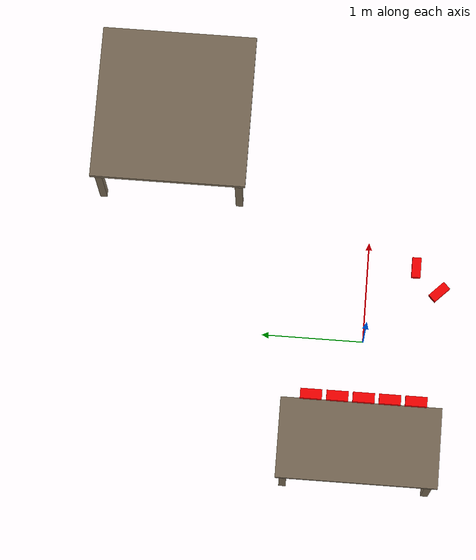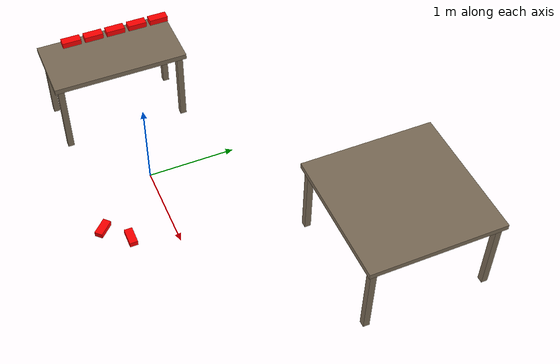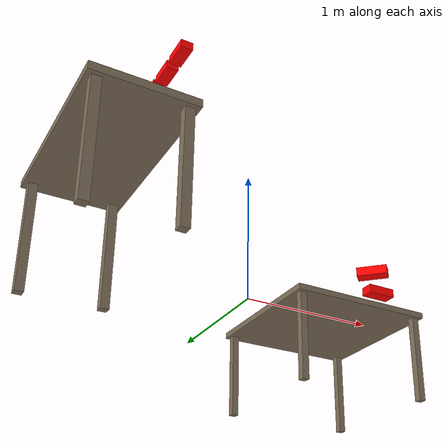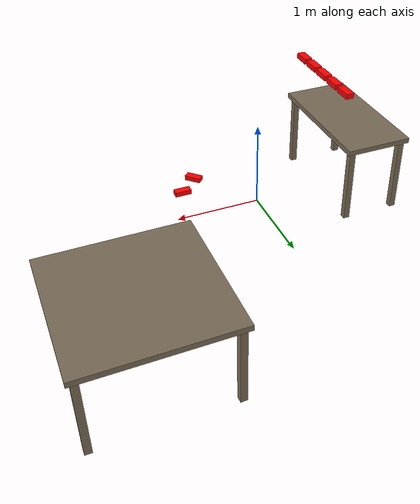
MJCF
<mujoco model="bricklaying_props">
  <include file="table.xml"/>
  <compiler angle="radian" meshdir="meshes" />
  <option noslip_iterations="5"> </option>

  <worldbody>
    <body name="second_table" pos="2 2 0">
      <geom type="box" name="second_tabletop" size="0.75 0.75 0.03" pos="0 0 0.9" material="table"/>
      <geom type="box" name="second_front_left_table_leg" size="0.035 0.035 0.435" pos="-0.68 -0.68 0.435" material="table"/>
      <geom type="box" name="second_front_right_table_leg" size="0.035 0.035 0.435" pos="-0.68 0.68 0.435" material="table"/>
      <geom type="box" name="second_back_left_table_leg" size="0.035 0.035 0.435" pos="0.68 -0.68 0.435" material="table"/>
      <geom type="box" name="second_back_right_table_leg" size="0.035 0.035 0.435" pos="0.68 0.68 0.435" material="table"/>
    </body>

    <body name="brick_0" pos="-0.8 -0.48 1.5">
      <joint name="brick_0_joint" type="free" limited="false" actuatorfrclimited="false" />
      <geom type="box" name="brick_0" size="0.045 0.1 0.03" rgba="1 0 0 1" mass="0.08" friction="2.0 0.5 0.01" solref="0.004 1" solimp="0.99 0.995 0.0001 0.5 2"/>
    </body>

    <body name="brick_1" pos="-0.8 -0.24 1.5">
      <joint name="brick_1_joint" type="free" limited="false" actuatorfrclimited="false" />
      <geom type="box" name="brick_1" size="0.045 0.1 0.03" rgba="1 0 0 1" mass="0.08" friction="2.0 0.5 0.01" solref="0.004 1" solimp="0.99 0.995 0.0001 0.5 2"/>
    </body>

    <body name="brick_2" pos="-0.8 0 1.5">
      <joint name="brick_2_joint" type="free" limited="false" actuatorfrclimited="false" />
      <geom type="box" name="brick_2" size="0.045 0.1 0.03" rgba="1 0 0 1" mass="0.08" friction="2.0 0.5 0.01" solref="0.004 1" solimp="0.99 0.995 0.0001 0.5 2"/>
    </body>

    <body name="brick_3" pos="-0.8 0.24 1.5">
      <joint name="brick_3_joint" type="free" limited="false" actuatorfrclimited="false" />
      <geom type="box" name="brick_3" size="0.045 0.1 0.03" rgba="1 0 0 1" mass="0.08" friction="2.0 0.5 0.01" solref="0.004 1" solimp="0.99 0.995 0.0001 0.5 2"/>
    </body>

    <body name="brick_4" pos="-0.8 0.48 1.5">
      <joint name="brick_4_joint" type="free" limited="false" actuatorfrclimited="false" />
      <geom type="box" name="brick_4" size="0.045 0.1 0.03" rgba="1 0 0 1" mass="0.08" friction="2.0 0.5 0.01" solref="0.004 1" solimp="0.99 0.995 0.0001 0.5 2"/>
    </body>

    <body name="floor_brick_0" pos="0.55 -0.72 0.031" quat="0.9238795 0 0 0.3826834">
      <joint name="floor_brick_0_joint" type="free" limited="false" actuatorfrclimited="false" />
      <geom type="box" name="floor_brick_0" size="0.045 0.1 0.03" rgba="1 0 0 1" mass="0.08" friction="2.0 0.5 0.01" solref="0.004 1" solimp="0.99 0.995 0.0001 0.5 2"/>
    </body>

    <body name="floor_brick_1" pos="0.78 -0.48 0.031" quat="0.7071068 0 0 0.7071068">
      <joint name="floor_brick_1_joint" type="free" limited="false" actuatorfrclimited="false" />
      <geom type="box" name="floor_brick_1" size="0.045 0.1 0.03" rgba="1 0 0 1" mass="0.08" friction="2.0 0.5 0.01" solref="0.004 1" solimp="0.99 0.995 0.0001 0.5 2"/>
    </body>

  </worldbody>
</mujoco>

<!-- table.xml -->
<mujoco model="table">
  <asset>
    <material name="table" rgba="0.48 0.42 0.34 1" specular="0.15" shininess="0.25"/>
  </asset>

  <worldbody>
    <body name="table" pos="-1.13 0 0">
        <geom type="box" name="tabletop" size="0.38 0.76 0.03" pos="0 0 0.9" material="table"/>
        <geom type="box" name="front_left_table_leg" size="0.035 0.035 0.435" pos="-0.31 -0.69 0.435" material="table"/>
        <geom type="box" name="front_right_table_leg" size="0.035 0.035 0.435" pos="-0.31 0.69 0.435" material="table"/>
        <geom type="box" name="back_left_table_leg" size="0.035 0.035 0.435" pos="0.31 -0.69 0.435" material="table"/>
        <geom type="box" name="back_right_table_leg" size="0.035 0.035 0.435" pos="0.31 0.69 0.435" material="table"/>
    </body>
  </worldbody>
</mujoco>
